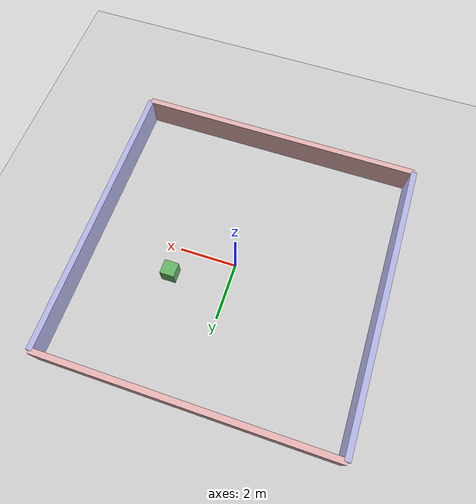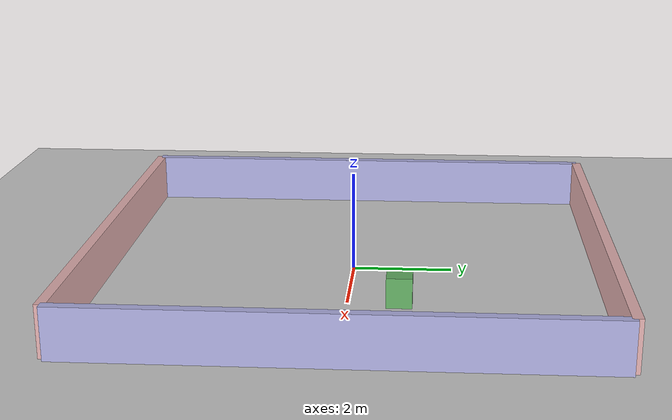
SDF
<?xml version="1.0" ?>
<!--
  empty_world.sdf
  ─────────────────────────────────────────────────────
  Clean simulation environment for mobile_robot
  Gazebo Harmonic | ROS 2 Jazzy
-->
<sdf version="1.9">
  <world name="mobile_robot_world">

    <!-- ── Physics ──────────────────────────────────── -->
    <physics name="1ms" type="ignored">
      <max_step_size>0.001</max_step_size>
      <real_time_factor>1.0</real_time_factor>
    </physics>

    <!-- ── Plugins ──────────────────────────────────── -->
    <plugin filename="gz-sim-physics-system"
            name="gz::sim::systems::Physics"/>
    <plugin filename="gz-sim-user-commands-system"
            name="gz::sim::systems::UserCommands"/>
    <plugin filename="gz-sim-scene-broadcaster-system"
            name="gz::sim::systems::SceneBroadcaster"/>
    <plugin filename="gz-sim-sensors-system"
            name="gz::sim::systems::Sensors">
      <render_engine>ogre2</render_engine>
    </plugin>
    <plugin filename="gz-sim-imu-system"
            name="gz::sim::systems::Imu"/>
    <plugin filename="gz-sim-contact-system"
            name="gz::sim::systems::Contact"/>

    <!-- ── Lighting ─────────────────────────────────── -->
    <light type="directional" name="sun">
      <cast_shadows>true</cast_shadows>
      <pose>0 0 10 0 0 0</pose>
      <diffuse>0.8 0.8 0.8 1</diffuse>
      <specular>0.2 0.2 0.2 1</specular>
      <attenuation>
        <range>1000</range>
        <constant>0.9</constant>
        <linear>0.01</linear>
        <quadratic>0.001</quadratic>
      </attenuation>
      <direction>-0.5 0.1 -0.9</direction>
    </light>

    <!-- ── Ground plane ─────────────────────────────── -->
    <model name="ground_plane">
      <static>true</static>
      <link name="link">
        <collision name="collision">
          <geometry>
            <plane>
              <normal>0 0 1</normal>
              <size>100 100</size>
            </plane>
          </geometry>
        </collision>
        <visual name="visual">
          <geometry>
            <plane>
              <normal>0 0 1</normal>
              <size>100 100</size>
            </plane>
          </geometry>
          <material>
            <ambient>0.8 0.8 0.8 1</ambient>
            <diffuse>0.8 0.8 0.8 1</diffuse>
            <specular>0.8 0.8 0.8 1</specular>
          </material>
        </visual>
      </link>
    </model>

    <!-- ── Surrounding walls (navigation obstacles) ─── -->
    <!-- North wall -->
    <model name="wall_north">
      <static>true</static>
      <pose>5 0 0.5 0 0 0</pose>
      <link name="link">
        <collision name="collision">
          <geometry><box><size>0.2 10 1</size></box></geometry>
        </collision>
        <visual name="visual">
          <geometry><box><size>0.2 10 1</size></box></geometry>
          <material>
            <ambient>0.7 0.7 0.9 1</ambient>
            <diffuse>0.7 0.7 0.9 1</diffuse>
          </material>
        </visual>
      </link>
    </model>

    <!-- South wall -->
    <model name="wall_south">
      <static>true</static>
      <pose>-5 0 0.5 0 0 0</pose>
      <link name="link">
        <collision name="collision">
          <geometry><box><size>0.2 10 1</size></box></geometry>
        </collision>
        <visual name="visual">
          <geometry><box><size>0.2 10 1</size></box></geometry>
          <material>
            <ambient>0.7 0.7 0.9 1</ambient>
            <diffuse>0.7 0.7 0.9 1</diffuse>
          </material>
        </visual>
      </link>
    </model>

    <!-- East wall -->
    <model name="wall_east">
      <static>true</static>
      <pose>0 5 0.5 0 0 0</pose>
      <link name="link">
        <collision name="collision">
          <geometry><box><size>10 0.2 1</size></box></geometry>
        </collision>
        <visual name="visual">
          <geometry><box><size>10 0.2 1</size></box></geometry>
          <material>
            <ambient>0.9 0.7 0.7 1</ambient>
            <diffuse>0.9 0.7 0.7 1</diffuse>
          </material>
        </visual>
      </link>
    </model>

    <!-- West wall -->
    <model name="wall_west">
      <static>true</static>
      <pose>0 -5 0.5 0 0 0</pose>
      <link name="link">
        <collision name="collision">
          <geometry><box><size>10 0.2 1</size></box></geometry>
        </collision>
        <visual name="visual">
          <geometry><box><size>10 0.2 1</size></box></geometry>
          <material>
            <ambient>0.9 0.7 0.7 1</ambient>
            <diffuse>0.9 0.7 0.7 1</diffuse>
          </material>
        </visual>
      </link>
    </model>

    <!-- ── A box obstacle ─────────────────────────── -->
    <model name="obstacle_box">
      <static>true</static>
      <pose>2 1 0.3 0 0 0</pose>
      <link name="link">
        <collision name="collision">
          <geometry><box><size>0.5 0.5 0.6</size></box></geometry>
        </collision>
        <visual name="visual">
          <geometry><box><size>0.5 0.5 0.6</size></box></geometry>
          <material>
            <ambient>0.4 0.7 0.4 1</ambient>
            <diffuse>0.4 0.7 0.4 1</diffuse>
          </material>
        </visual>
      </link>
    </model>

  </world>
</sdf>
